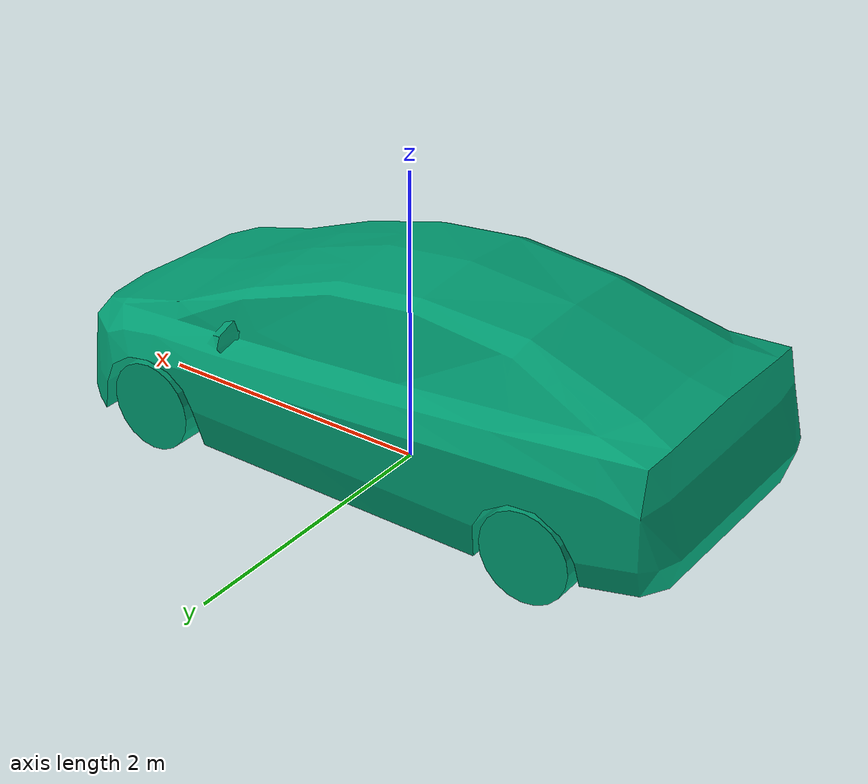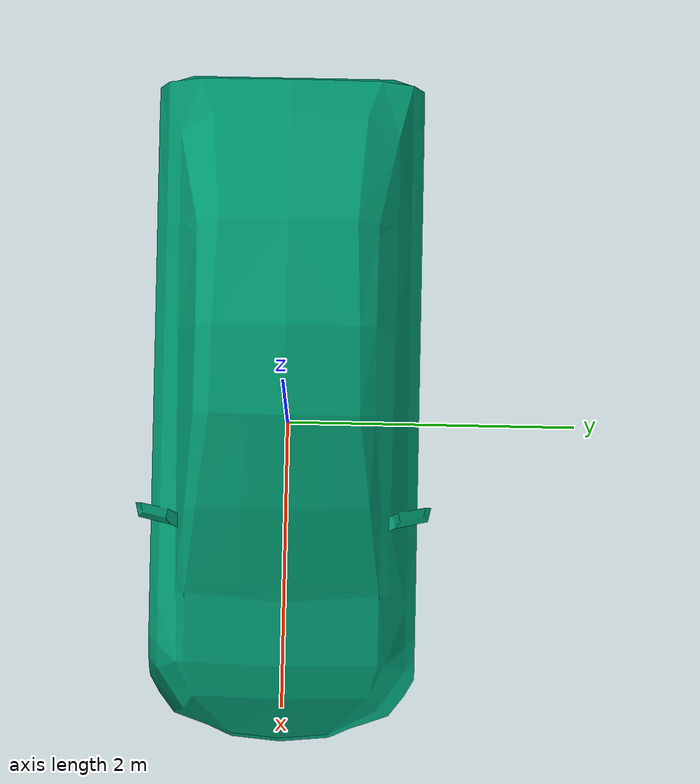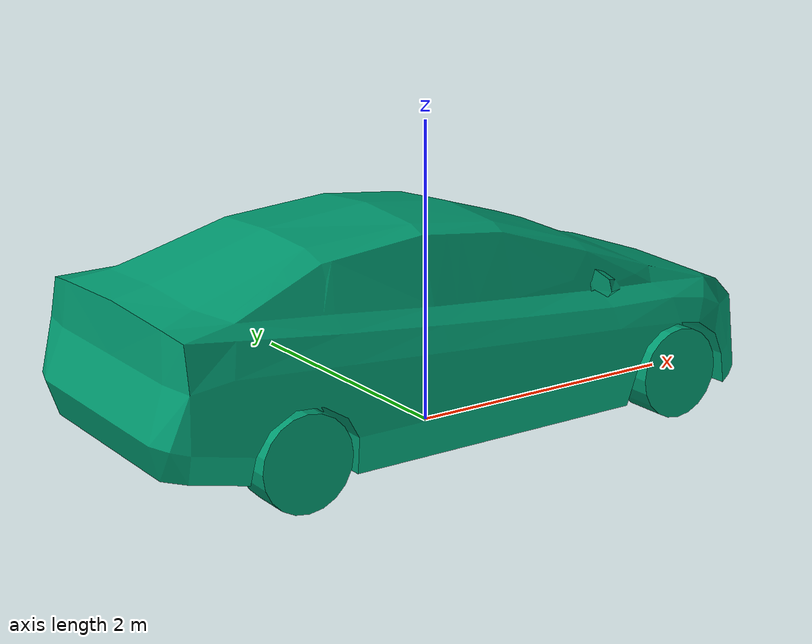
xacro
<?xml version="1.0"?>
<robot xmlns:xacro="http://www.ros.org/wiki/xacro">

  <xacro:property name="wheel_radius" value="0.31265"/>
  <xacro:property name="wheel_width"  value="0.20"/>
  <xacro:property name="front_axle_x" value="1.41"/>
  <xacro:property name="rear_axle_x"  value="-1.45"/>
  <xacro:property name="front_track_y" value="0.76"/>
  <xacro:property name="rear_track_y"  value="0.786"/>
  <xacro:property name="axle_z"       value="${wheel_radius}"/>
  <xacro:property name="max_steer"    value="0.5"/>

  <link name="base_link"/>

  <joint name="base_footprint_joint" type="fixed">
    <parent link="base_link"/>
    <child  link="base_footprint"/>
    <origin xyz="0 0 0" rpy="0 0 0"/>
  </joint>

  <link name="base_footprint"/>

  <joint name="chassis_joint" type="fixed">
    <parent link="base_link"/>
    <child  link="chassis"/>
    <origin xyz="0 0 0" rpy="0 0 0"/>
  </joint>

  <link name="chassis">
    <!-- Original Prius SDF mesh has no visual pose; rotate only to map SDF Y-forward to ROS X-forward. -->
    <visual>
      <origin xyz="0 0 0" rpy="0 0 1.5708"/>
      <geometry>
        <mesh filename="file://$(find gcamp_gazebo)/meshes/Hybrid.obj" scale="0.01 0.01 0.01"/>
      </geometry>
    </visual>
    <collision>
      <origin xyz="0 0 0.65" rpy="0 0 0"/>
      <geometry><box size="4.5 1.8 1.3"/></geometry>
    </collision>
    <inertial>
      <mass value="1326.0"/>
      <origin xyz="0 0 0.5" rpy="0 0 0"/>
      <inertia ixx="2581.13" ixy="0" ixz="0" iyy="591.31" iyz="0" izz="2681.95"/>
    </inertial>
  </link>

  <!-- ── Front left: steering parent + spinning wheel ── -->
  <joint name="front_left_steering_joint" type="revolute">
    <parent link="base_link"/>
    <child  link="front_left_steer_link"/>
    <origin xyz="${front_axle_x} ${front_track_y} ${axle_z}" rpy="0 0 0"/>
    <axis xyz="0 0 1"/>
    <limit lower="-${max_steer}" upper="${max_steer}" effort="100" velocity="1.0"/>
  </joint>

  <link name="front_left_steer_link">
    <visual>
      <geometry><sphere radius="0.001"/></geometry>
    </visual>
    <inertial>
      <mass value="0.1"/>
      <inertia ixx="1e-5" ixy="0" ixz="0" iyy="1e-5" iyz="0" izz="1e-5"/>
    </inertial>
  </link>

  <joint name="front_left_wheel_joint" type="continuous">
    <parent link="front_left_steer_link"/>
    <child  link="front_left_wheel"/>
    <origin xyz="0 0 0" rpy="0 0 0"/>
    <axis xyz="0 1 0"/>
  </joint>

  <link name="front_left_wheel">
    <visual>
      <geometry><sphere radius="0.001"/></geometry>
    </visual>
    <collision>
      <origin xyz="0 0 0" rpy="${pi/2} 0 0"/>
      <geometry><cylinder radius="${wheel_radius}" length="${wheel_width}"/></geometry>
    </collision>
    <inertial>
      <mass value="11.0"/>
      <inertia ixx="0.311" ixy="0" ixz="0" iyy="0.538" iyz="0" izz="0.311"/>
    </inertial>
  </link>

  <!-- ── Front right: steering parent + spinning wheel ── -->
  <joint name="front_right_steering_joint" type="revolute">
    <parent link="base_link"/>
    <child  link="front_right_steer_link"/>
    <origin xyz="${front_axle_x} -${front_track_y} ${axle_z}" rpy="0 0 0"/>
    <axis xyz="0 0 1"/>
    <limit lower="-${max_steer}" upper="${max_steer}" effort="100" velocity="1.0"/>
  </joint>

  <link name="front_right_steer_link">
    <visual>
      <geometry><sphere radius="0.001"/></geometry>
    </visual>
    <inertial>
      <mass value="0.1"/>
      <inertia ixx="1e-5" ixy="0" ixz="0" iyy="1e-5" iyz="0" izz="1e-5"/>
    </inertial>
  </link>

  <joint name="front_right_wheel_joint" type="continuous">
    <parent link="front_right_steer_link"/>
    <child  link="front_right_wheel"/>
    <origin xyz="0 0 0" rpy="0 0 0"/>
    <axis xyz="0 1 0"/>
  </joint>

  <link name="front_right_wheel">
    <visual>
      <geometry><sphere radius="0.001"/></geometry>
    </visual>
    <collision>
      <origin xyz="0 0 0" rpy="${pi/2} 0 0"/>
      <geometry><cylinder radius="${wheel_radius}" length="${wheel_width}"/></geometry>
    </collision>
    <inertial>
      <mass value="11.0"/>
      <inertia ixx="0.311" ixy="0" ixz="0" iyy="0.538" iyz="0" izz="0.311"/>
    </inertial>
  </link>

  <!-- ── Rear left wheel (driven) ── -->
  <joint name="rear_left_wheel_joint" type="continuous">
    <parent link="base_link"/>
    <child  link="rear_left_wheel"/>
    <origin xyz="${rear_axle_x} ${rear_track_y} ${axle_z}" rpy="0 0 0"/>
    <axis xyz="0 1 0"/>
  </joint>

  <link name="rear_left_wheel">
    <visual>
      <geometry><sphere radius="0.001"/></geometry>
    </visual>
    <collision>
      <origin xyz="0 0 0" rpy="${pi/2} 0 0"/>
      <geometry><cylinder radius="${wheel_radius}" length="${wheel_width}"/></geometry>
    </collision>
    <inertial>
      <mass value="11.0"/>
      <inertia ixx="0.311" ixy="0" ixz="0" iyy="0.538" iyz="0" izz="0.311"/>
    </inertial>
  </link>

  <!-- ── Rear right wheel (driven) ── -->
  <joint name="rear_right_wheel_joint" type="continuous">
    <parent link="base_link"/>
    <child  link="rear_right_wheel"/>
    <origin xyz="${rear_axle_x} -${rear_track_y} ${axle_z}" rpy="0 0 0"/>
    <axis xyz="0 1 0"/>
  </joint>

  <link name="rear_right_wheel">
    <visual>
      <geometry><sphere radius="0.001"/></geometry>
    </visual>
    <collision>
      <origin xyz="0 0 0" rpy="${pi/2} 0 0"/>
      <geometry><cylinder radius="${wheel_radius}" length="${wheel_width}"/></geometry>
    </collision>
    <inertial>
      <mass value="11.0"/>
      <inertia ixx="0.311" ixy="0" ixz="0" iyy="0.538" iyz="0" izz="0.311"/>
    </inertial>
  </link>

</robot>
